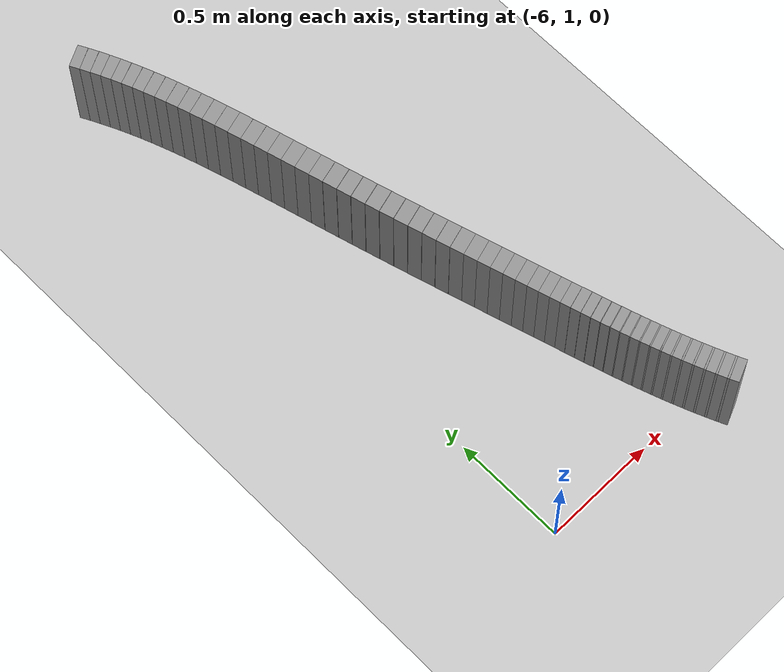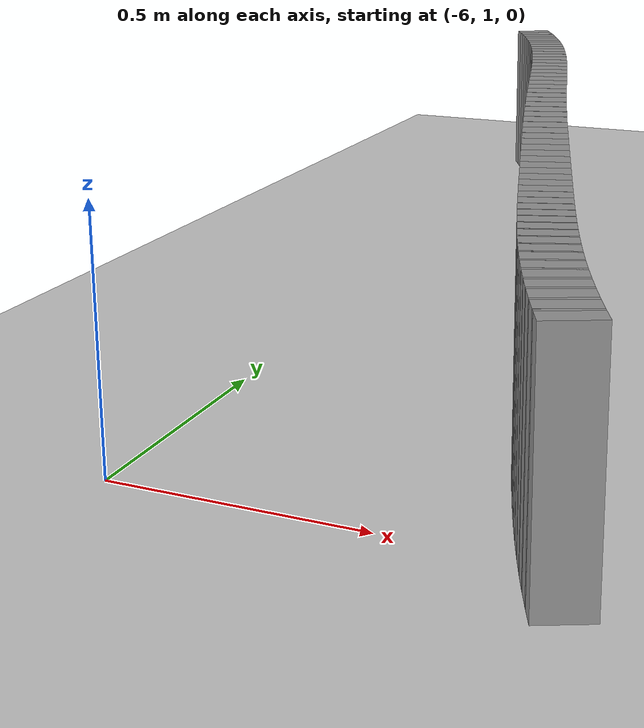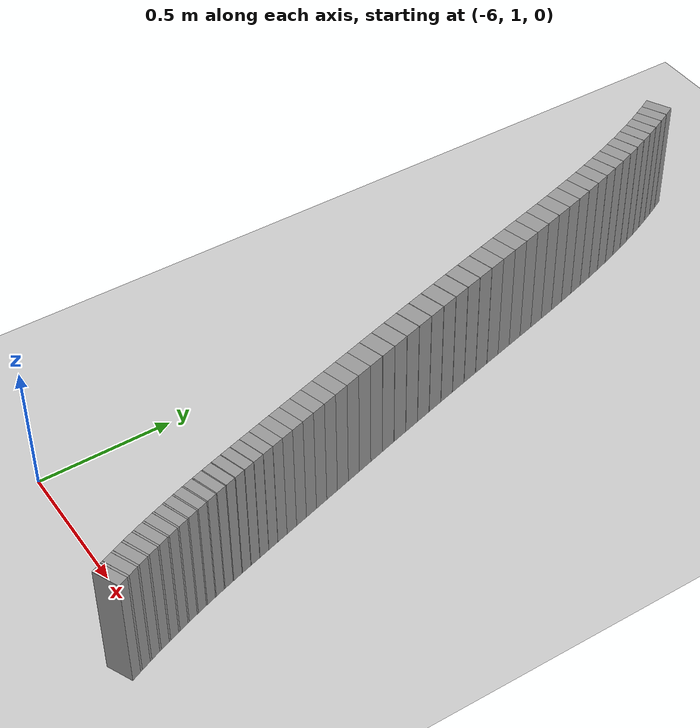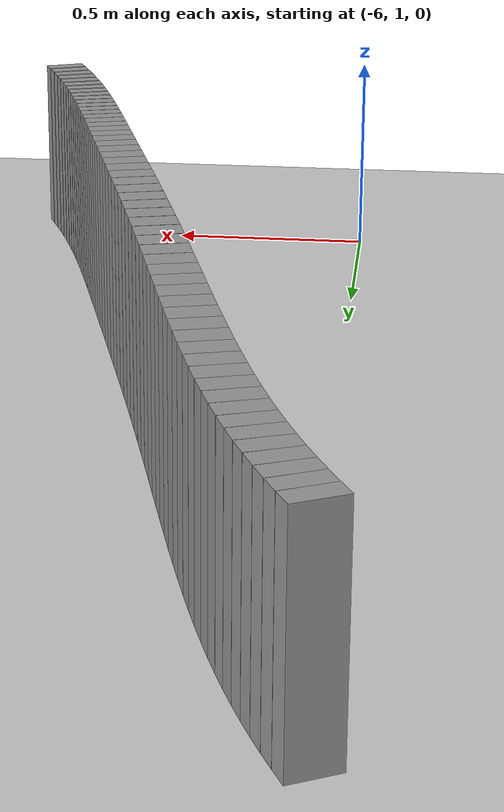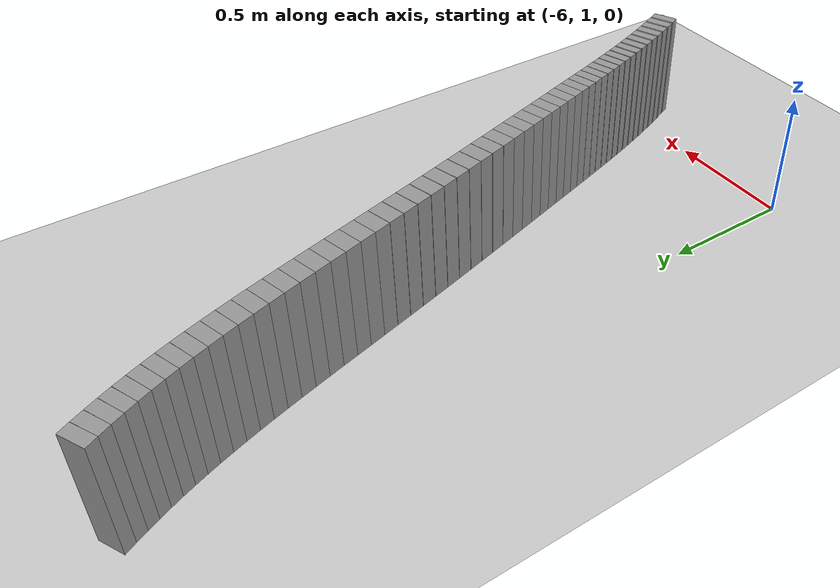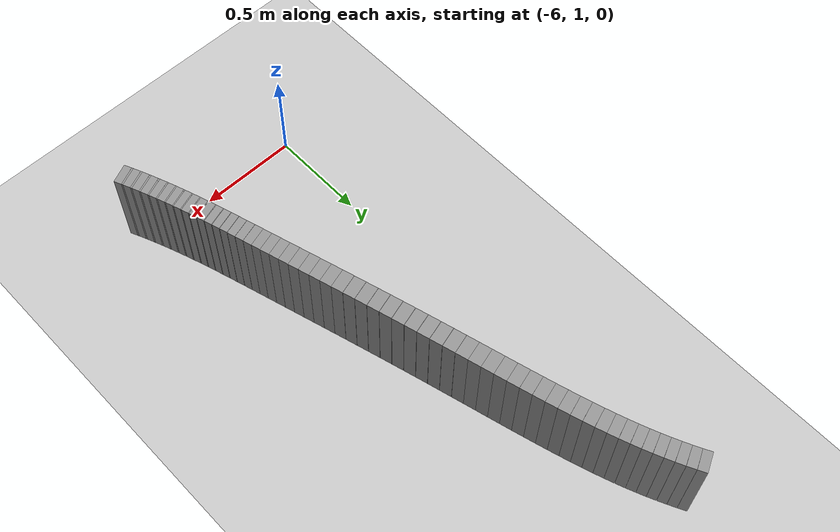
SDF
<sdf version="1.6">
 <world name="default">
  <include><uri>model://ground_plane</uri></include>
  <include><uri>model://sun</uri></include>
  <model name="wall_134_outward">
   <static>true</static>
   <link name="link">
    <collision name="collision">
     <geometry><box><size>0.0392904650790579 0.1 0.45</size></box></geometry>
    </collision>
    <visual name="visual">
     <geometry><box><size>0.0392904650790579 0.1 0.45</size></box></geometry>
     <material>
      <script><uri>file://media/materials/scripts/gazebo.material</uri><name>Gazebo/Gray</name></script>
     </material>
    </visual>
   </link>
   <pose>-5.1558841475431825 0.8758497013292207 0.225 0 0 1.9899383125926264</pose>
  </model>
  <model name="wall_135_outward">
   <static>true</static>
   <link name="link">
    <collision name="collision">
     <geometry><box><size>0.008669483246872221 0.1 0.45</size></box></geometry>
    </collision>
    <visual name="visual">
     <geometry><box><size>0.008669483246872221 0.1 0.45</size></box></geometry>
     <material>
      <script><uri>file://media/materials/scripts/gazebo.material</uri><name>Gazebo/Gray</name></script>
     </material>
    </visual>
   </link>
   <pose>-5.16561479026088 0.8977665740162597 0.225 0 0 1.9827136803717897</pose>
  </model>
  <model name="wall_136_outward">
   <static>true</static>
   <link name="link">
    <collision name="collision">
     <geometry><box><size>0.03893472232722014 0.1 0.45</size></box></geometry>
    </collision>
    <visual name="visual">
     <geometry><box><size>0.03893472232722014 0.1 0.45</size></box></geometry>
     <material>
      <script><uri>file://media/materials/scripts/gazebo.material</uri><name>Gazebo/Gray</name></script>
     </material>
    </visual>
   </link>
   <pose>-5.175015285098656 0.919633590030264 0.225 0 0 1.9754890481508804</pose>
  </model>
  <model name="wall_137_outward">
   <static>true</static>
   <link name="link">
    <collision name="collision">
     <geometry><box><size>0.00843917559489084 0.1 0.45</size></box></geometry>
    </collision>
    <visual name="visual">
     <geometry><box><size>0.00843917559489084 0.1 0.45</size></box></geometry>
     <material>
      <script><uri>file://media/materials/scripts/gazebo.material</uri><name>Gazebo/Gray</name></script>
     </material>
    </visual>
   </link>
   <pose>-5.184314378323932 0.9414187765918212 0.225 0 0 1.968456343850272</pose>
  </model>
  <model name="wall_138_outward">
   <static>true</static>
   <link name="link">
    <collision name="collision">
     <geometry><box><size>0.03859707543018251 0.1 0.45</size></box></geometry>
    </collision>
    <visual name="visual">
     <geometry><box><size>0.03859707543018251 0.1 0.45</size></box></geometry>
     <material>
      <script><uri>file://media/materials/scripts/gazebo.material</uri><name>Gazebo/Gray</name></script>
     </material>
    </visual>
   </link>
   <pose>-5.193296740555703 0.9631538949223922 0.225 0 0 1.9614236395496731</pose>
  </model>
  <model name="wall_139_outward">
   <static>true</static>
   <link name="link">
    <collision name="collision">
     <geometry><box><size>0.008116534297241284 0.1 0.45</size></box></geometry>
    </collision>
    <visual name="visual">
     <geometry><box><size>0.008116534297241284 0.1 0.45</size></box></geometry>
     <material>
      <script><uri>file://media/materials/scripts/gazebo.material</uri><name>Gazebo/Gray</name></script>
     </material>
    </visual>
   </link>
   <pose>-5.202164860390253 0.9847616065324961 0.225 0 0 1.9546598093952954</pose>
  </model>
  <model name="wall_140_outward">
   <static>true</static>
   <link name="link">
    <collision name="collision">
     <geometry><box><size>0.03828894059806958 0.1 0.45</size></box></geometry>
    </collision>
    <visual name="visual">
     <geometry><box><size>0.03828894059806958 0.1 0.45</size></box></geometry>
     <material>
      <script><uri>file://media/materials/scripts/gazebo.material</uri><name>Gazebo/Gray</name></script>
     </material>
    </visual>
   </link>
   <pose>-5.210734185487263 1.0063238452389704 0.225 0 0 1.9478959792407873</pose>
  </model>
  <model name="wall_141_outward">
   <static>true</static>
   <link name="link">
    <collision name="collision">
     <geometry><box><size>0.007698219367294755 0.1 0.45</size></box></geometry>
    </collision>
    <visual name="visual">
     <geometry><box><size>0.007698219367294755 0.1 0.45</size></box></geometry>
     <material>
      <script><uri>file://media/materials/scripts/gazebo.material</uri><name>Gazebo/Gray</name></script>
     </material>
    </visual>
   </link>
   <pose>-5.2191780202101885 1.027710835277654 0.225 0 0 1.9414807524314992</pose>
  </model>
  <model name="wall_142_outward">
   <static>true</static>
   <link name="link">
    <collision name="collision">
     <geometry><box><size>0.03802269619354843 0.1 0.45</size></box></geometry>
    </collision>
    <visual name="visual">
     <geometry><box><size>0.03802269619354843 0.1 0.45</size></box></geometry>
     <material>
      <script><uri>file://media/materials/scripts/gazebo.material</uri><name>Gazebo/Gray</name></script>
     </material>
    </visual>
   </link>
   <pose>-5.227345480711731 1.0490624185280104 0.225 0 0 1.9350655256223015</pose>
  </model>
  <model name="wall_143_outward">
   <static>true</static>
   <link name="link">
    <collision name="collision">
     <geometry><box><size>0.007206979823153338 0.1 0.45</size></box></geometry>
    </collision>
    <visual name="visual">
     <geometry><box><size>0.007206979823153338 0.1 0.45</size></box></geometry>
     <material>
      <script><uri>file://media/materials/scripts/gazebo.material</uri><name>Gazebo/Gray</name></script>
     </material>
    </visual>
   </link>
   <pose>-5.235382145806589 1.0702010192676887 0.225 0 0 1.9290596729976413</pose>
  </model>
  <model name="wall_144_outward">
   <static>true</static>
   <link name="link">
    <collision name="collision">
     <geometry><box><size>0.03781101487577773 0.1 0.45</size></box></geometry>
    </collision>
    <visual name="visual">
     <geometry><box><size>0.03781101487577773 0.1 0.45</size></box></geometry>
     <material>
      <script><uri>file://media/materials/scripts/gazebo.material</uri><name>Gazebo/Gray</name></script>
     </material>
    </visual>
   </link>
   <pose>-5.24316843572759 1.091320351492829 0.225 0 0 1.923053820372943</pose>
  </model>
  <model name="wall_145_outward">
   <static>true</static>
   <link name="link">
    <collision name="collision">
     <geometry><box><size>0.0066531322160075235 0.1 0.45</size></box></geometry>
    </collision>
    <visual name="visual">
     <geometry><box><size>0.0066531322160075235 0.1 0.45</size></box></geometry>
     <material>
      <script><uri>file://media/materials/scripts/gazebo.material</uri><name>Gazebo/Gray</name></script>
     </material>
    </visual>
   </link>
   <pose>-5.250821562941992 1.1121936072232201 0.225 0 0 1.9175095151216233</pose>
  </model>
  <model name="wall_146_outward">
   <static>true</static>
   <link name="link">
    <collision name="collision">
     <geometry><box><size>0.03766988174371798 0.1 0.45</size></box></geometry>
    </collision>
    <visual name="visual">
     <geometry><box><size>0.03766988174371798 0.1 0.45</size></box></geometry>
     <material>
      <script><uri>file://media/materials/scripts/gazebo.material</uri><name>Gazebo/Gray</name></script>
     </material>
    </visual>
   </link>
   <pose>-5.258253919019543 1.1330715991948397 0.225 0 0 1.9119652098702917</pose>
  </model>
  <model name="wall_147_outward">
   <static>true</static>
   <link name="link">
    <collision name="collision">
     <geometry><box><size>0.0060332561971190215 0.1 0.45</size></box></geometry>
    </collision>
    <visual name="visual">
     <geometry><box><size>0.0060332561971190215 0.1 0.45</size></box></geometry>
     <material>
      <script><uri>file://media/materials/scripts/gazebo.material</uri><name>Gazebo/Gray</name></script>
     </material>
    </visual>
   </link>
   <pose>-5.265550904651686 1.1536687745085565 0.225 0 0 1.906937475190731</pose>
  </model>
  <model name="wall_148_outward">
   <static>true</static>
   <link name="link">
    <collision name="collision">
     <geometry><box><size>0.03761415239056314 0.1 0.45</size></box></geometry>
    </collision>
    <visual name="visual">
     <geometry><box><size>0.03761415239056314 0.1 0.45</size></box></geometry>
     <material>
      <script><uri>file://media/materials/scripts/gazebo.material</uri><name>Gazebo/Gray</name></script>
     </material>
    </visual>
   </link>
   <pose>-5.272660037702421 1.174302069501056 0.225 0 0 1.9019097405112602</pose>
  </model>
  <model name="wall_149_outward">
   <static>true</static>
   <link name="link">
    <collision name="collision">
     <geometry><box><size>0.0053720848363760215 0.1 0.45</size></box></geometry>
    </collision>
    <visual name="visual">
     <geometry><box><size>0.0053720848363760215 0.1 0.45</size></box></geometry>
     <material>
      <script><uri>file://media/materials/scripts/gazebo.material</uri><name>Gazebo/Gray</name></script>
     </material>
    </visual>
   </link>
   <pose>-5.279635987826443 1.194631586346828 0.225 0 0 1.8974329881942904</pose>
  </model>
  <model name="wall_150_outward">
   <static>true</static>
   <link name="link">
    <collision name="collision">
     <geometry><box><size>0.0376657130066973 0.1 0.45</size></box></geometry>
    </collision>
    <visual name="visual">
     <geometry><box><size>0.0376657130066973 0.1 0.45</size></box></geometry>
     <material>
      <script><uri>file://media/materials/scripts/gazebo.material</uri><name>Gazebo/Gray</name></script>
     </material>
    </visual>
   </link>
   <pose>-5.28646061496815 1.215039586282316 0.225 0 0 1.8929562358773346</pose>
  </model>
  <model name="wall_151_outward">
   <static>true</static>
   <link name="link">
    <collision name="collision">
     <geometry><box><size>0.004710374082260501 0.1 0.45</size></box></geometry>
    </collision>
    <visual name="visual">
     <geometry><box><size>0.004710374082260501 0.1 0.45</size></box></geometry>
     <material>
      <script><uri>file://media/materials/scripts/gazebo.material</uri><name>Gazebo/Gray</name></script>
     </material>
    </visual>
   </link>
   <pose>-5.293160315440387 1.2351404947045468 0.225 0 0 1.8890309140618906</pose>
  </model>
  <model name="wall_152_outward">
   <static>true</static>
   <link name="link">
    <collision name="collision">
     <geometry><box><size>0.03784490370786611 0.1 0.45</size></box></geometry>
    </collision>
    <visual name="visual">
     <geometry><box><size>0.03784490370786611 0.1 0.45</size></box></geometry>
     <material>
      <script><uri>file://media/materials/scripts/gazebo.material</uri><name>Gazebo/Gray</name></script>
     </material>
    </visual>
   </link>
   <pose>-5.2997472891529105 1.2553728699378648 0.225 0 0 1.8851055922462652</pose>
  </model>
  <model name="wall_153_outward">
   <static>true</static>
   <link name="link">
    <collision name="collision">
     <geometry><box><size>0.004029789504955409 0.1 0.45</size></box></geometry>
    </collision>
    <visual name="visual">
     <geometry><box><size>0.004029789504955409 0.1 0.45</size></box></geometry>
     <material>
      <script><uri>file://media/materials/scripts/gazebo.material</uri><name>Gazebo/Gray</name></script>
     </material>
    </visual>
   </link>
   <pose>-5.306213833524934 1.2752865802108526 0.225 0 0 1.8817474280136788</pose>
  </model>
  <model name="wall_154_outward">
   <static>true</static>
   <link name="link">
    <collision name="collision">
     <geometry><box><size>0.03817615008690737 0.1 0.45</size></box></geometry>
    </collision>
    <visual name="visual">
     <geometry><box><size>0.03817615008690737 0.1 0.45</size></box></geometry>
     <material>
      <script><uri>file://media/materials/scripts/gazebo.material</uri><name>Gazebo/Gray</name></script>
     </material>
    </visual>
   </link>
   <pose>-5.3126095285249795 1.295397024908718 0.225 0 0 1.8783892637810196</pose>
  </model>
  <model name="wall_155_outward">
   <static>true</static>
   <link name="link">
    <collision name="collision">
     <geometry><box><size>0.0033611197543936704 0.1 0.45</size></box></geometry>
    </collision>
    <visual name="visual">
     <geometry><box><size>0.0033611197543936704 0.1 0.45</size></box></geometry>
     <material>
      <script><uri>file://media/materials/scripts/gazebo.material</uri><name>Gazebo/Gray</name></script>
     </material>
    </visual>
   </link>
   <pose>-5.3188930649628405 1.3151923050187984 0.225 0 0 1.8755883269900564</pose>
  </model>
  <model name="wall_156_outward">
   <static>true</static>
   <link name="link">
    <collision name="collision">
     <geometry><box><size>0.038681575820627735 0.1 0.45</size></box></geometry>
    </collision>
    <visual name="visual">
     <geometry><box><size>0.038681575820627735 0.1 0.45</size></box></geometry>
     <material>
      <script><uri>file://media/materials/scripts/gazebo.material</uri><name>Gazebo/Gray</name></script>
     </material>
    </visual>
   </link>
   <pose>-5.325149763276929 1.3352609505638595 0.225 0 0 1.8727873901990415</pose>
  </model>
  <model name="wall_157_outward">
   <static>true</static>
   <link name="link">
    <collision name="collision">
     <geometry><box><size>0.0027219762087724764 0.1 0.45</size></box></geometry>
    </collision>
    <visual name="visual">
     <geometry><box><size>0.0027219762087724764 0.1 0.45</size></box></geometry>
     <material>
      <script><uri>file://media/materials/scripts/gazebo.material</uri><name>Gazebo/Gray</name></script>
     </material>
    </visual>
   </link>
   <pose>-5.331303973350188 1.3550268073148501 0.225 0 0 1.8705190747467435</pose>
  </model>
  <model name="wall_158_outward">
   <static>true</static>
   <link name="link">
    <collision name="collision">
     <geometry><box><size>0.03938348460565794 0.1 0.45</size></box></geometry>
    </collision>
    <visual name="visual">
     <geometry><box><size>0.03938348460565794 0.1 0.45</size></box></geometry>
     <material>
      <script><uri>file://media/materials/scripts/gazebo.material</uri><name>Gazebo/Gray</name></script>
     </material>
    </visual>
   </link>
   <pose>-5.337477213462675 1.3751541128031293 0.225 0 0 1.8682507592940683</pose>
  </model>
  <model name="wall_159_outward">
   <static>true</static>
   <link name="link">
    <collision name="collision">
     <geometry><box><size>0.0021024967520438804 0.1 0.45</size></box></geometry>
    </collision>
    <visual name="visual">
     <geometry><box><size>0.0021024967520438804 0.1 0.45</size></box></geometry>
     <material>
      <script><uri>file://media/materials/scripts/gazebo.material</uri><name>Gazebo/Gray</name></script>
     </material>
    </visual>
   </link>
   <pose>-5.343554960758531 1.3949867270171756 0.225 0 0 1.8664986777708725</pose>
  </model>
  <model name="wall_160_outward">
   <static>true</static>
   <link name="link">
    <collision name="collision">
     <geometry><box><size>0.040298786690709555 0.1 0.45</size></box></geometry>
    </collision>
    <visual name="visual">
     <geometry><box><size>0.040298786690709555 0.1 0.45</size></box></geometry>
     <material>
      <script><uri>file://media/materials/scripts/gazebo.material</uri><name>Gazebo/Gray</name></script>
     </material>
    </visual>
   </link>
   <pose>-5.349699297569019 1.4152774704617401 0.225 0 0 1.8647465962478216</pose>
  </model>
  <model name="wall_161_outward">
   <static>true</static>
   <link name="link">
    <collision name="collision">
     <geometry><box><size>0.001554253997251245 0.1 0.45</size></box></geometry>
    </collision>
    <visual name="visual">
     <geometry><box><size>0.001554253997251245 0.1 0.45</size></box></geometry>
     <material>
      <script><uri>file://media/materials/scripts/gazebo.material</uri><name>Gazebo/Gray</name></script>
     </material>
    </visual>
   </link>
   <pose>-5.3557614857788405 1.4353066766753475 0.225 0 0 1.8634513842211313</pose>
  </model>
  <model name="wall_162_outward">
   <static>true</static>
   <link name="link">
    <collision name="collision">
     <geometry><box><size>0.04143326886619459 0.1 0.45</size></box></geometry>
    </collision>
    <visual name="visual">
     <geometry><box><size>0.04143326886619459 0.1 0.45</size></box></geometry>
     <material>
      <script><uri>file://media/materials/scripts/gazebo.material</uri><name>Gazebo/Gray</name></script>
     </material>
    </visual>
   </link>
   <pose>-5.361936640666386 1.4558942752626187 0.225 0 0 1.862156172194798</pose>
  </model>
  <model name="wall_163_outward">
   <static>true</static>
   <link name="link">
    <collision name="collision">
     <geometry><box><size>0.0010755379820981523 0.1 0.45</size></box></geometry>
    </collision>
    <visual name="visual">
     <geometry><box><size>0.0010755379820981523 0.1 0.45</size></box></geometry>
     <material>
      <script><uri>file://media/materials/scripts/gazebo.material</uri><name>Gazebo/Gray</name></script>
     </material>
    </visual>
   </link>
   <pose>-5.368041613088174 1.4762530317987128 0.225 0 0 1.861259890422965</pose>
  </model>
  <model name="wall_164_outward">
   <static>true</static>
   <link name="link">
    <collision name="collision">
     <geometry><box><size>0.042786243936992166 0.1 0.45</size></box></geometry>
    </collision>
    <visual name="visual">
     <geometry><box><size>0.042786243936992166 0.1 0.45</size></box></geometry>
     <material>
      <script><uri>file://media/materials/scripts/gazebo.material</uri><name>Gazebo/Gray</name></script>
     </material>
    </visual>
   </link>
   <pose>-5.3743041678007994 1.4972707476001264 0.225 0 0 1.86036360865132</pose>
  </model>
  <model name="wall_165_outward">
   <static>true</static>
   <link name="link">
    <collision name="collision">
     <geometry><box><size>0.0006823580631727531 0.1 0.45</size></box></geometry>
    </collision>
    <visual name="visual">
     <geometry><box><size>0.0006823580631727531 0.1 0.45</size></box></geometry>
     <material>
      <script><uri>file://media/materials/scripts/gazebo.material</uri><name>Gazebo/Gray</name></script>
     </material>
    </visual>
   </link>
   <pose>-5.38050994088996 1.5181002511460104 0.225 0 0 1.8597949769002533</pose>
  </model>
  <model name="wall_166_outward">
   <static>true</static>
   <link name="link">
    <collision name="collision">
     <geometry><box><size>0.04434043901418957 0.1 0.45</size></box></geometry>
    </collision>
    <visual name="visual">
     <geometry><box><size>0.04434043901418957 0.1 0.45</size></box></geometry>
     <material>
      <script><uri>file://media/materials/scripts/gazebo.material</uri><name>Gazebo/Gray</name></script>
     </material>
    </visual>
   </link>
   <pose>-5.386913436731023 1.5396816853600535 0.225 0 0 1.859226345151391</pose>
  </model>
  <model name="wall_167_outward">
   <static>true</static>
   <link name="link">
    <collision name="collision">
     <geometry><box><size>0.04644915583272142 0.1 0.45</size></box></geometry>
    </collision>
    <visual name="visual">
     <geometry><box><size>0.04644915583272142 0.1 0.45</size></box></geometry>
     <material>
      <script><uri>file://media/materials/scripts/gazebo.material</uri><name>Gazebo/Gray</name></script>
     </material>
    </visual>
   </link>
   <pose>-5.399811787820196 1.583205471573295 0.225 0 0 1.8585938843897918</pose>
  </model>
  <model name="wall_168_outward">
   <static>true</static>
   <link name="link">
    <collision name="collision">
     <geometry><box><size>0.048094242359751745 0.1 0.45</size></box></geometry>
    </collision>
    <visual name="visual">
     <geometry><box><size>0.048094242359751745 0.1 0.45</size></box></geometry>
     <material>
      <script><uri>file://media/materials/scripts/gazebo.material</uri><name>Gazebo/Gray</name></script>
     </material>
    </visual>
   </link>
   <pose>-5.413222905100566 1.6285348817164509 0.225 0 0 1.8583106237186113</pose>
  </model>
  <model name="wall_169_outward">
   <static>true</static>
   <link name="link">
    <collision name="collision">
     <geometry><box><size>0.049895816044038206 0.1 0.45</size></box></geometry>
    </collision>
    <visual name="visual">
     <geometry><box><size>0.049895816044038206 0.1 0.45</size></box></geometry>
     <material>
      <script><uri>file://media/materials/scripts/gazebo.material</uri><name>Gazebo/Gray</name></script>
     </material>
    </visual>
   </link>
   <pose>-5.4271147198322005 1.6755192447216598 0.225 0 0 1.8582404857218597</pose>
  </model>
  <model name="wall_170_outward">
   <static>true</static>
   <link name="link">
    <collision name="collision">
     <geometry><box><size>0.05180557341057689 0.1 0.45</size></box></geometry>
    </collision>
    <visual name="visual">
     <geometry><box><size>0.05180557341057689 0.1 0.45</size></box></geometry>
     <material>
      <script><uri>file://media/materials/scripts/gazebo.material</uri><name>Gazebo/Gray</name></script>
     </material>
    </visual>
   </link>
   <pose>-5.441531524116774 1.724283462219586 0.225 0 0 1.8582614898546486</pose>
  </model>
  <model name="wall_171_outward">
   <static>true</static>
   <link name="link">
    <collision name="collision">
     <geometry><box><size>0.053729632545882734 0.1 0.45</size></box></geometry>
    </collision>
    <visual name="visual">
     <geometry><box><size>0.053729632545882734 0.1 0.45</size></box></geometry>
     <material>
      <script><uri>file://media/materials/scripts/gazebo.material</uri><name>Gazebo/Gray</name></script>
     </material>
    </visual>
   </link>
   <pose>-5.456491673566156 1.7748859705772349 0.225 0 0 1.858236507354713</pose>
  </model>
  <model name="wall_172_outward">
   <static>true</static>
   <link name="link">
    <collision name="collision">
     <geometry><box><size>0.05559939353443599 0.1 0.45</size></box></geometry>
    </collision>
    <visual name="visual">
     <geometry><box><size>0.05559939353443599 0.1 0.45</size></box></geometry>
     <material>
      <script><uri>file://media/materials/scripts/gazebo.material</uri><name>Gazebo/Gray</name></script>
     </material>
    </visual>
   </link>
   <pose>-5.471984925961628 1.8273089435844463 0.225 0 0 1.8580846912165343</pose>
  </model>
  <model name="wall_173_outward">
   <static>true</static>
   <link name="link">
    <collision name="collision">
     <geometry><box><size>0.05734935560760478 0.1 0.45</size></box></geometry>
    </collision>
    <visual name="visual">
     <geometry><box><size>0.05734935560760478 0.1 0.45</size></box></geometry>
     <material>
      <script><uri>file://media/materials/scripts/gazebo.material</uri><name>Gazebo/Gray</name></script>
     </material>
    </visual>
   </link>
   <pose>-5.4879773806899035 1.8814716270063323 0.225 0 0 1.857731405608697</pose>
  </model>
  <model name="wall_174_outward">
   <static>true</static>
   <link name="link">
    <collision name="collision">
     <geometry><box><size>0.058940801989395206 0.1 0.45</size></box></geometry>
    </collision>
    <visual name="visual">
     <geometry><box><size>0.058940801989395206 0.1 0.45</size></box></geometry>
     <material>
      <script><uri>file://media/materials/scripts/gazebo.material</uri><name>Gazebo/Gray</name></script>
     </material>
    </visual>
   </link>
   <pose>-5.504415461846747 1.9372447329068474 0.225 0 0 1.8571021830587802</pose>
  </model>
  <model name="wall_175_outward">
   <static>true</static>
   <link name="link">
    <collision name="collision">
     <geometry><box><size>0.06032529075792956 0.1 0.45</size></box></geometry>
    </collision>
    <visual name="visual">
     <geometry><box><size>0.06032529075792956 0.1 0.45</size></box></geometry>
     <material>
      <script><uri>file://media/materials/scripts/gazebo.material</uri><name>Gazebo/Gray</name></script>
     </material>
    </visual>
   </link>
   <pose>-5.52122910584851 1.9944583746483713 0.225 0 0 1.8561571572809317</pose>
  </model>
  <model name="wall_176_outward">
   <static>true</static>
   <link name="link">
    <collision name="collision">
     <geometry><box><size>0.0007718821280955842 0.1 0.45</size></box></geometry>
    </collision>
    <visual name="visual">
     <geometry><box><size>0.0007718821280955842 0.1 0.45</size></box></geometry>
     <material>
      <script><uri>file://media/materials/scripts/gazebo.material</uri><name>Gazebo/Gray</name></script>
     </material>
    </visual>
   </link>
   <pose>-5.529828406323759 2.0237716508234946 0.225 0 0 1.855509457873997</pose>
  </model>
  <model name="wall_177_outward">
   <static>true</static>
   <link name="link">
    <collision name="collision">
     <geometry><box><size>0.060714322913931223 0.1 0.45</size></box></geometry>
    </collision>
    <visual name="visual">
     <geometry><box><size>0.060714322913931223 0.1 0.45</size></box></geometry>
     <material>
      <script><uri>file://media/materials/scripts/gazebo.material</uri><name>Gazebo/Gray</name></script>
     </material>
    </visual>
   </link>
   <pose>-5.538444852379236 2.053282584477702 0.225 0 0 1.8548662227222628</pose>
  </model>
  <model name="wall_178_outward">
   <static>true</static>
   <link name="link">
    <collision name="collision">
     <geometry><box><size>0.000972966199212561 0.1 0.45</size></box></geometry>
    </collision>
    <visual name="visual">
     <geometry><box><size>0.000972966199212561 0.1 0.45</size></box></geometry>
     <material>
      <script><uri>file://media/materials/scripts/gazebo.material</uri><name>Gazebo/Gray</name></script>
     </material>
    </visual>
   </link>
   <pose>-5.547088859863745 2.0828902107660623 0.225 0 0 1.854055417467514</pose>
  </model>
  <model name="wall_179_outward">
   <static>true</static>
   <link name="link">
    <collision name="collision">
     <geometry><box><size>0.061443269902349475 0.1 0.45</size></box></geometry>
    </collision>
    <visual name="visual">
     <geometry><box><size>0.061443269902349475 0.1 0.45</size></box></geometry>
     <material>
      <script><uri>file://media/materials/scripts/gazebo.material</uri><name>Gazebo/Gray</name></script>
     </material>
    </visual>
   </link>
   <pose>-5.555787183182967 2.11286162704692 0.225 0 0 1.8532446122125654</pose>
  </model>
  <model name="wall_180_outward">
   <static>true</static>
   <link name="link">
    <collision name="collision">
     <geometry><box><size>0.0011671392411570418 0.1 0.45</size></box></geometry>
    </collision>
    <visual name="visual">
     <geometry><box><size>0.0011671392411570418 0.1 0.45</size></box></geometry>
     <material>
      <script><uri>file://media/materials/scripts/gazebo.material</uri><name>Gazebo/Gray</name></script>
     </material>
    </visual>
   </link>
   <pose>-5.564511641323643 2.142926550902988 0.225 0 0 1.8522719960248812</pose>
  </model>
  <model name="wall_181_outward">
   <static>true</static>
   <link name="link">
    <collision name="collision">
     <geometry><box><size>0.061970070198873975 0.1 0.45</size></box></geometry>
    </collision>
    <visual name="visual">
     <geometry><box><size>0.061970070198873975 0.1 0.45</size></box></geometry>
     <material>
      <script><uri>file://media/materials/scripts/gazebo.material</uri><name>Gazebo/Gray</name></script>
     </material>
    </visual>
   </link>
   <pose>-5.5732516099964755 2.1732611801979256 0.225 0 0 1.8512993798372779</pose>
  </model>
  <model name="wall_182_outward">
   <static>true</static>
   <link name="link">
    <collision name="collision">
     <geometry><box><size>0.0013315630865053047 0.1 0.45</size></box></geometry>
    </collision>
    <visual name="visual">
     <geometry><box><size>0.0013315630865053047 0.1 0.45</size></box></geometry>
     <material>
      <script><uri>file://media/materials/scripts/gazebo.material</uri><name>Gazebo/Gray</name></script>
     </material>
    </visual>
   </link>
   <pose>-5.582013082798194 2.2036751697930654 0.225 0 0 1.850189743703916</pose>
  </model>
  <model name="wall_183_outward">
   <static>true</static>
   <link name="link">
    <collision name="collision">
     <geometry><box><size>0.062332127092971853 0.1 0.45</size></box></geometry>
    </collision>
    <visual name="visual">
     <geometry><box><size>0.062332127092971853 0.1 0.45</size></box></geometry>
     <material>
      <script><uri>file://media/materials/scripts/gazebo.material</uri><name>Gazebo/Gray</name></script>
     </material>
    </visual>
   </link>
   <pose>-5.590758187437533 2.2342821866538287 0.225 0 0 1.8490801075710073</pose>
  </model>
  <model name="wall_184_outward">
   <static>true</static>
   <link name="link">
    <collision name="collision">
     <geometry><box><size>0.001444727009998615 0.1 0.45</size></box></geometry>
    </collision>
    <visual name="visual">
     <geometry><box><size>0.001444727009998615 0.1 0.45</size></box></geometry>
     <material>
      <script><uri>file://media/materials/scripts/gazebo.material</uri><name>Gazebo/Gray</name></script>
     </material>
    </visual>
   </link>
   <pose>-5.599517288865375 2.2649440504158775 0.225 0 0 1.8478761681050808</pose>
  </model>
  <model name="wall_185_outward">
   <static>true</static>
   <link name="link">
    <collision name="collision">
     <geometry><box><size>0.062570567303582 0.1 0.45</size></box></geometry>
    </collision>
    <visual name="visual">
     <geometry><box><size>0.062570567303582 0.1 0.45</size></box></geometry>
     <material>
      <script><uri>file://media/materials/scripts/gazebo.material</uri><name>Gazebo/Gray</name></script>
     </material>
    </visual>
   </link>
   <pose>-5.608236682852903 2.295741154374639 0.225 0 0 1.8466722286393178</pose>
  </model>
  <model name="wall_186_outward">
   <static>true</static>
   <link name="link">
    <collision name="collision">
     <geometry><box><size>0.0014978785292178826 0.1 0.45</size></box></geometry>
    </collision>
    <visual name="visual">
     <geometry><box><size>0.0014978785292178826 0.1 0.45</size></box></geometry>
     <material>
      <script><uri>file://media/materials/scripts/gazebo.material</uri><name>Gazebo/Gray</name></script>
     </material>
    </visual>
   </link>
   <pose>-5.616961579493592 2.3265643206616993 0.225 0 0 1.8454239962076742</pose>
  </model>
  <model name="wall_187_outward">
   <static>true</static>
   <link name="link">
    <collision name="collision">
     <geometry><box><size>0.06273246020615013 0.1 0.45</size></box></geometry>
    </collision>
    <visual name="visual">
     <geometry><box><size>0.06273246020615013 0.1 0.45</size></box></geometry>
     <material>
      <script><uri>file://media/materials/scripts/gazebo.material</uri><name>Gazebo/Gray</name></script>
     </material>
    </visual>
   </link>
   <pose>-5.62563315482352 2.3574866079026338 0.225 0 0 1.844175763775671</pose>
  </model>
  <model name="wall_188_outward">
   <static>true</static>
   <link name="link">
    <collision name="collision">
     <geometry><box><size>0.001471043560959233 0.1 0.45</size></box></geometry>
    </collision>
    <visual name="visual">
     <geometry><box><size>0.001471043560959233 0.1 0.45</size></box></geometry>
     <material>
      <script><uri>file://media/materials/scripts/gazebo.material</uri><name>Gazebo/Gray</name></script>
     </material>
    </visual>
   </link>
   <pose>-5.634299339313246 2.388396471792886 0.225 0 0 1.8429498938344928</pose>
  </model>
  <model name="wall_189_outward">
   <static>true</static>
   <link name="link">
    <collision name="collision">
     <geometry><box><size>0.06285463201795359 0.1 0.45</size></box></geometry>
    </collision>
    <visual name="visual">
     <geometry><box><size>0.06285463201795359 0.1 0.45</size></box></geometry>
     <material>
      <script><uri>file://media/materials/scripts/gazebo.material</uri><name>Gazebo/Gray</name></script>
     </material>
    </visual>
   </link>
   <pose>-5.64290780055552 2.4193858650585534 0.225 0 0 1.8417240238933446</pose>
  </model>
  <model name="wall_190_outward">
   <static>true</static>
   <link name="link">
    <collision name="collision">
     <geometry><box><size>0.0013473936558925119 0.1 0.45</size></box></geometry>
    </collision>
    <visual name="visual">
     <geometry><box><size>0.0013473936558925119 0.1 0.45</size></box></geometry>
     <material>
      <script><uri>file://media/materials/scripts/gazebo.material</uri><name>Gazebo/Gray</name></script>
     </material>
    </visual>
   </link>
   <pose>-5.651498118286748 2.4503161324311415 0.225 0 0 1.8406011956108526</pose>
  </model>
  <model name="wall_191_outward">
   <static>true</static>
   <link name="link">
    <collision name="collision">
     <geometry><box><size>0.06297001078653076 0.1 0.45</size></box></geometry>
    </collision>
    <visual name="visual">
     <geometry><box><size>0.06297001078653076 0.1 0.45</size></box></geometry>
     <material>
      <script><uri>file://media/materials/scripts/gazebo.material</uri><name>Gazebo/Gray</name></script>
     </material>
    </visual>
   </link>
   <pose>-5.660035728550595 2.4813208306685564 0.225 0 0 1.8394783673283237</pose>
  </model>
  <model name="wall_192_outward">
   <static>true</static>
   <link name="link">
    <collision name="collision">
     <geometry><box><size>0.0011279772117381553 0.1 0.45</size></box></geometry>
    </collision>
    <visual name="visual">
     <geometry><box><size>0.0011279772117381553 0.1 0.45</size></box></geometry>
     <material>
      <script><uri>file://media/materials/scripts/gazebo.material</uri><name>Gazebo/Gray</name></script>
     </material>
    </visual>
   </link>
   <pose>-5.668542975183618 2.5122200985464826 0.225 0 0 1.8385383861798972</pose>
  </model>
  <model name="wall_193_outward">
   <static>true</static>
   <link name="link">
    <collision name="collision">
     <geometry><box><size>0.06309644020155203 0.1 0.45</size></box></geometry>
    </collision>
    <visual name="visual">
     <geometry><box><size>0.06309644020155203 0.1 0.45</size></box></geometry>
     <material>
      <script><uri>file://media/materials/scripts/gazebo.material</uri><name>Gazebo/Gray</name></script>
     </material>
    </visual>
   </link>
   <pose>-5.677009806554405 2.5431960036799355 0.225 0 0 1.8375984050319156</pose>
  </model>
  <model name="wall_194_outward">
   <static>true</static>
   <link name="link">
    <collision name="collision">
     <geometry><box><size>0.0008040350474531607 0.1 0.45</size></box></geometry>
    </collision>
    <visual name="visual">
     <geometry><box><size>0.0008040350474531607 0.1 0.45</size></box></geometry>
     <material>
      <script><uri>file://media/materials/scripts/gazebo.material</uri><name>Gazebo/Gray</name></script>
     </material>
    </visual>
   </link>
   <pose>-5.685433163398095 2.5740158793781305 0.225 0 0 1.836928375775602</pose>
  </model>
  <model name="wall_195_outward">
   <static>true</static>
   <link name="link">
    <collision name="collision">
     <geometry><box><size>0.06324074021267626 0.1 0.45</size></box></geometry>
    </collision>
    <visual name="visual">
     <geometry><box><size>0.06324074021267626 0.1 0.45</size></box></geometry>
     <material>
      <script><uri>file://media/materials/scripts/gazebo.material</uri><name>Gazebo/Gray</name></script>
     </material>
    </visual>
   </link>
   <pose>-5.693834661034546 2.604916496544911 0.225 0 0 1.8362583465192264</pose>
  </model>
  <model name="wall_196_outward">
   <static>true</static>
   <link name="link">
    <collision name="collision">
     <geometry><box><size>0.06373110472391508 0.1 0.45</size></box></geometry>
    </collision>
    <visual name="visual">
     <geometry><box><size>0.06373110472391508 0.1 0.45</size></box></geometry>
     <material>
      <script><uri>file://media/materials/scripts/gazebo.material</uri><name>Gazebo/Gray</name></script>
     </material>
    </visual>
   </link>
   <pose>-5.7104705033039025 2.6661840301724427 0.225 0 0 1.8356074862614074</pose>
  </model>
  <model name="wall_197_outward">
   <static>true</static>
   <link name="link">
    <collision name="collision">
     <geometry><box><size>0.06314830000014922 0.1 0.45</size></box></geometry>
    </collision>
    <visual name="visual">
     <geometry><box><size>0.06314830000014922 0.1 0.45</size></box></geometry>
     <material>
      <script><uri>file://media/materials/scripts/gazebo.material</uri><name>Gazebo/Gray</name></script>
     </material>
    </visual>
   </link>
   <pose>-5.727080114403048 2.7274107940864285 0.225 0 0 1.835795430312681</pose>
  </model>
  <model name="wall_198_outward">
   <static>true</static>
   <link name="link">
    <collision name="collision">
     <geometry><box><size>0.0626662177225863 0.1 0.45</size></box></geometry>
    </collision>
    <visual name="visual">
     <geometry><box><size>0.0626662177225863 0.1 0.45</size></box></geometry>
     <material>
      <script><uri>file://media/materials/scripts/gazebo.material</uri><name>Gazebo/Gray</name></script>
     </material>
    </visual>
   </link>
   <pose>-5.7435906254266875 2.7881127293909778 0.225 0 0 1.8369388638272244</pose>
  </model>
  <model name="wall_199_outward">
   <static>true</static>
   <link name="link">
    <collision name="collision">
     <geometry><box><size>0.06206706898653856 0.1 0.45</size></box></geometry>
    </collision>
    <visual name="visual">
     <geometry><box><size>0.06206706898653856 0.1 0.45</size></box></geometry>
     <material>
      <script><uri>file://media/materials/scripts/gazebo.material</uri><name>Gazebo/Gray</name></script>
     </material>
    </visual>
   </link>
   <pose>-5.76005990369117 2.8482655043233613 0.225 0 0 1.8391478191487018</pose>
  </model>
  <model name="wall_200_outward">
   <static>true</static>
   <link name="link">
    <collision name="collision">
     <geometry><box><size>0.061328785857350465 0.1 0.45</size></box></geometry>
    </collision>
    <visual name="visual">
     <geometry><box><size>0.061328785857350465 0.1 0.45</size></box></geometry>
     <material>
      <script><uri>file://media/materials/scripts/gazebo.material</uri><name>Gazebo/Gray</name></script>
     </material>
    </visual>
   </link>
   <pose>-5.7765184395726 2.9077275930121687 0.225 0 0 1.8425249948655458</pose>
  </model>
  <model name="wall_201_outward">
   <static>true</static>
   <link name="link">
    <collision name="collision">
     <geometry><box><size>0.06043874069163956 0.1 0.45</size></box></geometry>
    </collision>
    <visual name="visual">
     <geometry><box><size>0.06043874069163956 0.1 0.45</size></box></geometry>
     <material>
      <script><uri>file://media/materials/scripts/gazebo.material</uri><name>Gazebo/Gray</name></script>
     </material>
    </visual>
   </link>
   <pose>-5.792994610451602 2.966339438447008 0.225 0 0 1.8471705499690891</pose>
  </model>
  <model name="wall_202_outward">
   <static>true</static>
   <link name="link">
    <collision name="collision">
     <geometry><box><size>0.05939313569959409 0.1 0.45</size></box></geometry>
    </collision>
    <visual name="visual">
     <geometry><box><size>0.05939313569959409 0.1 0.45</size></box></geometry>
     <material>
      <script><uri>file://media/materials/scripts/gazebo.material</uri><name>Gazebo/Gray</name></script>
     </material>
    </visual>
   </link>
   <pose>-5.809514865985536 3.0239325681441445 0.225 0 0 1.8531623655713014</pose>
  </model>
  <model name="wall_203_outward">
   <static>true</static>
   <link name="link">
    <collision name="collision">
     <geometry><box><size>0.05818660309451888 0.1 0.45</size></box></geometry>
    </collision>
    <visual name="visual">
     <geometry><box><size>0.05818660309451888 0.1 0.45</size></box></geometry>
     <material>
      <script><uri>file://media/materials/scripts/gazebo.material</uri><name>Gazebo/Gray</name></script>
     </material>
    </visual>
   </link>
   <pose>-5.826102302989172 3.0803334387678163 0.225 0 0 1.860574822609996</pose>
  </model>
  <model name="wall_204_outward">
   <static>true</static>
   <link name="link">
    <collision name="collision">
     <geometry><box><size>0.056835489828597395 0.1 0.45</size></box></geometry>
    </collision>
    <visual name="visual">
     <geometry><box><size>0.056835489828597395 0.1 0.45</size></box></geometry>
     <material>
      <script><uri>file://media/materials/scripts/gazebo.material</uri><name>Gazebo/Gray</name></script>
     </material>
    </visual>
   </link>
   <pose>-5.842778082148785 3.135373179693603 0.225 0 0 1.869494211426196</pose>
  </model>
  <model name="wall_205_outward">
   <static>true</static>
   <link name="link">
    <collision name="collision">
     <geometry><box><size>0.05536776834248138 0.1 0.45</size></box></geometry>
    </collision>
    <visual name="visual">
     <geometry><box><size>0.05536776834248138 0.1 0.45</size></box></geometry>
     <material>
      <script><uri>file://media/materials/scripts/gazebo.material</uri><name>Gazebo/Gray</name></script>
     </material>
    </visual>
   </link>
   <pose>-5.8595638833342365 3.188903951253744 0.225 0 0 1.8799594347473376</pose>
  </model>
  <model name="wall_206_outward">
   <static>true</static>
   <link name="link">
    <collision name="collision">
     <geometry><box><size>0.05382941906790709 0.1 0.45</size></box></geometry>
    </collision>
    <visual name="visual">
     <geometry><box><size>0.05382941906790709 0.1 0.45</size></box></geometry>
     <material>
      <script><uri>file://media/materials/scripts/gazebo.material</uri><name>Gazebo/Gray</name></script>
     </material>
    </visual>
   </link>
   <pose>-5.876484581482613 3.240813373777935 0.225 0 0 1.892013463259463</pose>
  </model>
  <model name="wall_207_outward">
   <static>true</static>
   <link name="link">
    <collision name="collision">
     <geometry><box><size>0.05228671975813791 0.1 0.45</size></box></geometry>
    </collision>
    <visual name="visual">
     <geometry><box><size>0.05228671975813791 0.1 0.45</size></box></geometry>
     <material>
      <script><uri>file://media/materials/scripts/gazebo.material</uri><name>Gazebo/Gray</name></script>
     </material>
    </visual>
   </link>
   <pose>-5.893572731386961 3.2910430834831685 0.225 0 0 1.905612532629948</pose>
  </model>
  <model name="wall_208_outward">
   <static>true</static>
   <link name="link">
    <collision name="collision">
     <geometry><box><size>0.05079748475898104 0.1 0.45</size></box></geometry>
    </collision>
    <visual name="visual">
     <geometry><box><size>0.05079748475898104 0.1 0.45</size></box></geometry>
     <material>
      <script><uri>file://media/materials/scripts/gazebo.material</uri><name>Gazebo/Gray</name></script>
     </material>
    </visual>
   </link>
   <pose>-5.910869428652475 3.339594726797456 0.225 0 0 1.9206677194538</pose>
  </model>
  <model name="wall_209_outward">
   <static>true</static>
   <link name="link">
    <collision name="collision">
     <geometry><box><size>0.04942571535859988 0.1 0.45</size></box></geometry>
    </collision>
    <visual name="visual">
     <geometry><box><size>0.04942571535859988 0.1 0.45</size></box></geometry>
     <material>
      <script><uri>file://media/materials/scripts/gazebo.material</uri><name>Gazebo/Gray</name></script>
     </material>
    </visual>
   </link>
   <pose>-5.928425037185589 3.386528778532594 0.225 0 0 1.9370210888115371</pose>
  </model>
  <model name="wall_210_outward">
   <static>true</static>
   <link name="link">
    <collision name="collision">
     <geometry><box><size>0.04822247531176909 0.1 0.45</size></box></geometry>
    </collision>
    <visual name="visual">
     <geometry><box><size>0.04822247531176909 0.1 0.45</size></box></geometry>
     <material>
      <script><uri>file://media/materials/scripts/gazebo.material</uri><name>Gazebo/Gray</name></script>
     </material>
    </visual>
   </link>
   <pose>-5.946299604221413 3.431961268861807 0.225 0 0 1.954448257458781</pose>
  </model>
  <model name="wall_211_outward">
   <static>true</static>
   <link name="link">
    <collision name="collision">
     <geometry><box><size>0.04722592359273668 0.1 0.45</size></box></geometry>
    </collision>
    <visual name="visual">
     <geometry><box><size>0.04722592359273668 0.1 0.45</size></box></geometry>
     <material>
      <script><uri>file://media/materials/scripts/gazebo.material</uri><name>Gazebo/Gray</name></script>
     </material>
    </visual>
   </link>
   <pose>-5.964560774167843 3.476051401575674 0.225 0 0 1.972672398199715</pose>
  </model>
  <model name="wall_212_outward">
   <static>true</static>
   <link name="link">
    <collision name="collision">
     <geometry><box><size>0.04644423637467944 0.1 0.45</size></box></geometry>
    </collision>
    <visual name="visual">
     <geometry><box><size>0.04644423637467944 0.1 0.45</size></box></geometry>
     <material>
      <script><uri>file://media/materials/scripts/gazebo.material</uri><name>Gazebo/Gray</name></script>
     </material>
    </visual>
   </link>
   <pose>-5.983278090601113 3.518981520388064 0.225 0 0 1.9913693208728878</pose>
  </model>
  <model name="wall_213_outward">
   <static>true</static>
   <link name="link">
    <collision name="collision">
     <geometry><box><size>0.04585996706562416 0.1 0.45</size></box></geometry>
    </collision>
    <visual name="visual">
     <geometry><box><size>0.04585996706562416 0.1 0.45</size></box></geometry>
     <material>
      <script><uri>file://media/materials/scripts/gazebo.material</uri><name>Gazebo/Gray</name></script>
     </material>
    </visual>
   </link>
   <pose>-6.002514372878531 3.5609314010586806 0.225 0 0 2.010231847650796</pose>
  </model>
  <model name="wall_214_outward">
   <static>true</static>
   <link name="link">
    <collision name="collision">
     <geometry><box><size>0.04543232788072256 0.1 0.45</size></box></geometry>
    </collision>
    <visual name="visual">
     <geometry><box><size>0.04543232788072256 0.1 0.45</size></box></geometry>
     <material>
      <script><uri>file://media/materials/scripts/gazebo.material</uri><name>Gazebo/Gray</name></script>
     </material>
    </visual>
   </link>
   <pose>-6.022316623728498 3.602056322517617 0.225 0 0 2.028948973035529</pose>
  </model>
  <model name="wall_215_outward">
   <static>true</static>
   <link name="link">
    <collision name="collision">
     <geometry><box><size>0.04509712939467416 0.1 0.45</size></box></geometry>
    </collision>
    <visual name="visual">
     <geometry><box><size>0.04509712939467416 0.1 0.45</size></box></geometry>
     <material>
      <script><uri>file://media/materials/scripts/gazebo.material</uri><name>Gazebo/Gray</name></script>
     </material>
    </visual>
   </link>
   <pose>-6.042706092602952 3.6424666292796295 0.225 0 0 2.0472912548444318</pose>
  </model>
 </world>
</sdf>
